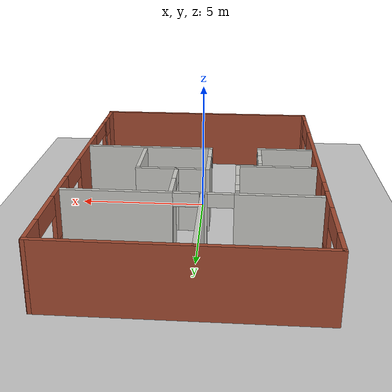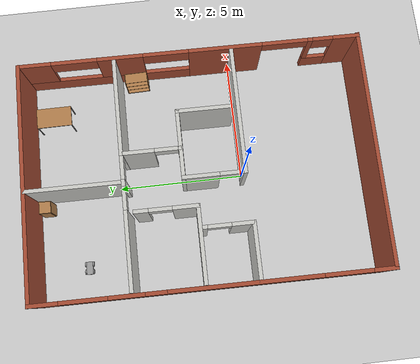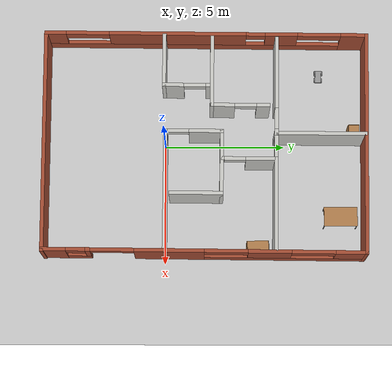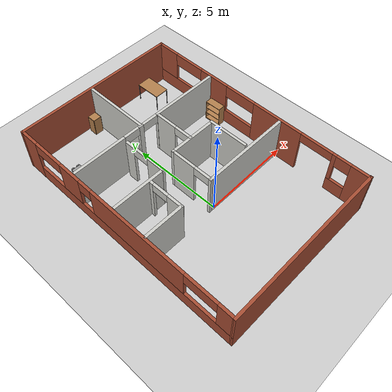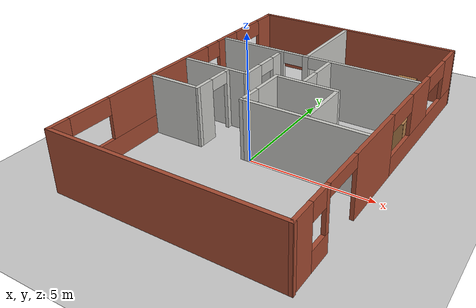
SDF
<sdf version="1.6">
 <world name="default">
  <model name="ground_plane">
   <static>1</static>
   <link name="link">
    <collision name="collision">
     <geometry><plane><normal>0 0 1</normal><size>100 100</size></plane></geometry>
     <surface><friction><ode><mu>100</mu><mu2>50</mu2></ode></friction></surface>
    </collision>
    <visual name="visual">
     <cast_shadows>0</cast_shadows>
     <geometry><plane><normal>0 0 1</normal><size>100 100</size></plane></geometry>
     <material>
      <script><uri>file://media/materials/scripts/gazebo.material</uri><name>Gazebo/Grey</name></script>
     </material>
    </visual>
   </link>
  </model>
  <model name="myhouse">
   <pose>0.168562 1.67263 0 0 0 -1.57911</pose>
   <link name="Wall_38">
    <collision name="Wall_38_Collision">
     <geometry><box><size>9.28418 0.15 2.5</size></box></geometry>
     <pose>0 0 1.25 0 -0 0</pose>
    </collision>
    <visual name="Wall_38_Visual">
     <pose>0 0 1.25 0 -0 0</pose>
     <geometry><box><size>9.28418 0.15 2.5</size></box></geometry>
     <material>
      <script><uri>file://media/materials/scripts/gazebo.material</uri><name>Gazebo/Bricks</name></script>
      <ambient>0.996078 0.47451 0.0196078 1</ambient>
     </material>
    </visual>
    <pose>-6.69036 -4.9e-05 0 0 0 -1.5708</pose>
   </link>
   <link name="Wall_39">
    <pose>0.000136 -4.56705 0 0 -0 0</pose>
    <visual name="Wall_39_Visual_0">
     <pose>-6.18995 0 1.25 0 -0 0</pose>
     <geometry><box><size>1.1511 0.15 2.5</size></box></geometry>
     <material>
      <script><uri>file://media/materials/scripts/gazebo.material</uri><name>Gazebo/Bricks</name></script>
      <ambient>0.996078 0.47451 0.0196078 1</ambient>
     </material>
    </visual>
    <collision name="Wall_39_Collision_0">
     <geometry><box><size>1.1511 0.15 2.5</size></box></geometry>
     <pose>-6.18995 0 1.25 0 -0 0</pose>
    </collision>
    <visual name="Wall_39_Visual_1">
     <pose>0.575549 0 0.4 0 -0 0</pose>
     <geometry><box><size>12.3799 0.15 0.8</size></box></geometry>
     <material>
      <script><uri>file://media/materials/scripts/gazebo.material</uri><name>Gazebo/Bricks</name></script>
      <ambient>0.996078 0.47451 0.0196078 1</ambient>
     </material>
    </visual>
    <collision name="Wall_39_Collision_1">
     <geometry><box><size>12.3799 0.15 0.8</size></box></geometry>
     <pose>0.575549 0 0.4 0 -0 0</pose>
    </collision>
    <visual name="Wall_39_Visual_2">
     <pose>-3.14182 0 1.65 0 -0 0</pose>
     <geometry><box><size>1.34517 0.15 1.7</size></box></geometry>
     <material>
      <script><uri>file://media/materials/scripts/gazebo.material</uri><name>Gazebo/Bricks</name></script>
      <ambient>0.996078 0.47451 0.0196078 1</ambient>
     </material>
    </visual>
    <collision name="Wall_39_Collision_2">
     <geometry><box><size>1.34517 0.15 1.7</size></box></geometry>
     <pose>-3.14182 0 1.65 0 -0 0</pose>
    </collision>
    <visual name="Wall_39_Visual_3">
     <pose>1.19211 0 1.65 0 -0 0</pose>
     <geometry><box><size>5.72269 0.15 1.7</size></box></geometry>
     <material>
      <script><uri>file://media/materials/scripts/gazebo.material</uri><name>Gazebo/Bricks</name></script>
      <ambient>0.996078 0.47451 0.0196078 1</ambient>
     </material>
    </visual>
    <collision name="Wall_39_Collision_3">
     <geometry><box><size>5.72269 0.15 1.7</size></box></geometry>
     <pose>1.19211 0 1.65 0 -0 0</pose>
    </collision>
    <visual name="Wall_39_Visual_4">
     <pose>6.30948 0 1.65 0 -0 0</pose>
     <geometry><box><size>0.912041 0.15 1.7</size></box></geometry>
     <material>
      <script><uri>file://media/materials/scripts/gazebo.material</uri><name>Gazebo/Bricks</name></script>
      <ambient>0.996078 0.47451 0.0196078 1</ambient>
     </material>
    </visual>
    <collision name="Wall_39_Collision_4">
     <geometry><box><size>0.912041 0.15 1.7</size></box></geometry>
     <pose>6.30948 0 1.65 0 -0 0</pose>
    </collision>
    <visual name="Wall_39_Visual_5">
     <pose>-4.7144 0 2.15 0 -0 0</pose>
     <geometry><box><size>1.8 0.15 0.7</size></box></geometry>
     <material>
      <script><uri>file://media/materials/scripts/gazebo.material</uri><name>Gazebo/Bricks</name></script>
      <ambient>0.996078 0.47451 0.0196078 1</ambient>
     </material>
    </visual>
    <collision name="Wall_39_Collision_5">
     <geometry><box><size>1.8 0.15 0.7</size></box></geometry>
     <pose>-4.7144 0 2.15 0 -0 0</pose>
    </collision>
    <visual name="Wall_39_Visual_6">
     <pose>-2.06923 0 2.15 0 -0 0</pose>
     <geometry><box><size>0.8 0.15 0.7</size></box></geometry>
     <material>
      <script><uri>file://media/materials/scripts/gazebo.material</uri><name>Gazebo/Bricks</name></script>
      <ambient>0.996078 0.47451 0.0196078 1</ambient>
     </material>
    </visual>
    <collision name="Wall_39_Collision_6">
     <geometry><box><size>0.8 0.15 0.7</size></box></geometry>
     <pose>-2.06923 0 2.15 0 -0 0</pose>
    </collision>
    <visual name="Wall_39_Visual_7">
     <pose>4.95346 0 2.15 0 -0 0</pose>
     <geometry><box><size>1.8 0.15 0.7</size></box></geometry>
     <material>
      <script><uri>file://media/materials/scripts/gazebo.material</uri><name>Gazebo/Bricks</name></script>
      <ambient>0.996078 0.47451 0.0196078 1</ambient>
     </material>
    </visual>
    <collision name="Wall_39_Collision_7">
     <geometry><box><size>1.8 0.15 0.7</size></box></geometry>
     <pose>4.95346 0 2.15 0 -0 0</pose>
    </collision>
   </link>
   <link name="Wall_40">
    <collision name="Wall_40_Collision">
     <geometry><box><size>9.28418 0.15 2.5</size></box></geometry>
     <pose>0 0 1.25 0 -0 0</pose>
    </collision>
    <visual name="Wall_40_Visual">
     <pose>0 0 1.25 0 -0 0</pose>
     <geometry><box><size>9.28418 0.15 2.5</size></box></geometry>
     <material>
      <script><uri>file://media/materials/scripts/gazebo.material</uri><name>Gazebo/Bricks</name></script>
      <ambient>0.996078 0.47451 0.0196078 1</ambient>
     </material>
    </visual>
    <pose>6.69014 4.1e-05 0 0 -0 1.57091</pose>
   </link>
   <link name="Wall_41">
    <pose>-0.000364 4.55175 0 0 -0 3.13932</pose>
    <visual name="Wall_41_Visual_0">
     <pose>-6.23299 0 1.25 0 -0 0</pose>
     <geometry><box><size>1.06429 0.15 2.5</size></box></geometry>
     <material>
      <script><uri>file://media/materials/scripts/gazebo.material</uri><name>Gazebo/Bricks</name></script>
      <ambient>0.996078 0.47451 0.0196078 1</ambient>
     </material>
    </visual>
    <collision name="Wall_41_Collision_0">
     <geometry><box><size>1.06429 0.15 2.5</size></box></geometry>
     <pose>-6.23299 0 1.25 0 -0 0</pose>
    </collision>
    <visual name="Wall_41_Visual_1">
     <pose>-1.44735 0 1.25 0 -0 0</pose>
     <geometry><box><size>2.90668 0.15 2.5</size></box></geometry>
     <material>
      <script><uri>file://media/materials/scripts/gazebo.material</uri><name>Gazebo/Bricks</name></script>
      <ambient>0.996078 0.47451 0.0196078 1</ambient>
     </material>
    </visual>
    <collision name="Wall_41_Collision_1">
     <geometry><box><size>2.90668 0.15 2.5</size></box></geometry>
     <pose>-1.44735 0 1.25 0 -0 0</pose>
    </collision>
    <visual name="Wall_41_Visual_2">
     <pose>-5.20076 0 0.4 0 -0 0</pose>
     <geometry><box><size>1.00016 0.15 0.8</size></box></geometry>
     <material>
      <script><uri>file://media/materials/scripts/gazebo.material</uri><name>Gazebo/Bricks</name></script>
      <ambient>0.996078 0.47451 0.0196078 1</ambient>
     </material>
    </visual>
    <collision name="Wall_41_Collision_2">
     <geometry><box><size>1.00016 0.15 0.8</size></box></geometry>
     <pose>-5.20076 0 0.4 0 -0 0</pose>
    </collision>
    <visual name="Wall_41_Visual_3">
     <pose>3.38556 0 0.4 0 -0 0</pose>
     <geometry><box><size>6.75914 0.15 0.8</size></box></geometry>
     <material>
      <script><uri>file://media/materials/scripts/gazebo.material</uri><name>Gazebo/Bricks</name></script>
      <ambient>0.996078 0.47451 0.0196078 1</ambient>
     </material>
    </visual>
    <collision name="Wall_41_Collision_3">
     <geometry><box><size>6.75914 0.15 0.8</size></box></geometry>
     <pose>3.38556 0 0.4 0 -0 0</pose>
    </collision>
    <visual name="Wall_41_Visual_4">
     <pose>-4.80076 0 1.65 0 -0 0</pose>
     <geometry><box><size>0.200157 0.15 1.7</size></box></geometry>
     <material>
      <script><uri>file://media/materials/scripts/gazebo.material</uri><name>Gazebo/Bricks</name></script>
      <ambient>0.996078 0.47451 0.0196078 1</ambient>
     </material>
    </visual>
    <collision name="Wall_41_Collision_4">
     <geometry><box><size>0.200157 0.15 1.7</size></box></geometry>
     <pose>-4.80076 0 1.65 0 -0 0</pose>
    </collision>
    <visual name="Wall_41_Visual_5">
     <pose>-4.80076 0 1.65 0 -0 0</pose>
     <geometry><box><size>0.200157 0.15 1.7</size></box></geometry>
     <material>
      <script><uri>file://media/materials/scripts/gazebo.material</uri><name>Gazebo/Bricks</name></script>
      <ambient>0.996078 0.47451 0.0196078 1</ambient>
     </material>
    </visual>
    <collision name="Wall_41_Collision_5">
     <geometry><box><size>0.200157 0.15 1.7</size></box></geometry>
     <pose>-4.80076 0 1.65 0 -0 0</pose>
    </collision>
    <visual name="Wall_41_Visual_6">
     <pose>2.70554 0 1.65 0 -0 0</pose>
     <geometry><box><size>1.79911 0.15 1.7</size></box></geometry>
     <material>
      <script><uri>file://media/materials/scripts/gazebo.material</uri><name>Gazebo/Bricks</name></script>
      <ambient>0.996078 0.47451 0.0196078 1</ambient>
     </material>
    </visual>
    <collision name="Wall_41_Collision_6">
     <geometry><box><size>1.79911 0.15 1.7</size></box></geometry>
     <pose>2.70554 0 1.65 0 -0 0</pose>
    </collision>
    <visual name="Wall_41_Visual_7">
     <pose>6.08511 0 1.65 0 -0 0</pose>
     <geometry><box><size>1.36003 0.15 1.7</size></box></geometry>
     <material>
      <script><uri>file://media/materials/scripts/gazebo.material</uri><name>Gazebo/Bricks</name></script>
      <ambient>0.996078 0.47451 0.0196078 1</ambient>
     </material>
    </visual>
    <collision name="Wall_41_Collision_7">
     <geometry><box><size>1.36003 0.15 1.7</size></box></geometry>
     <pose>6.08511 0 1.65 0 -0 0</pose>
    </collision>
    <visual name="Wall_41_Visual_8">
     <pose>-5.30084 0 2.15 0 -0 0</pose>
     <geometry><box><size>0.8 0.15 0.7</size></box></geometry>
     <material>
      <script><uri>file://media/materials/scripts/gazebo.material</uri><name>Gazebo/Bricks</name></script>
      <ambient>0.996078 0.47451 0.0196078 1</ambient>
     </material>
    </visual>
    <collision name="Wall_41_Collision_8">
     <geometry><box><size>0.8 0.15 0.7</size></box></geometry>
     <pose>-5.30084 0 2.15 0 -0 0</pose>
    </collision>
    <visual name="Wall_41_Visual_9">
     <pose>0.905991 0 2.15 0 -0 0</pose>
     <geometry><box><size>1.8 0.15 0.7</size></box></geometry>
     <material>
      <script><uri>file://media/materials/scripts/gazebo.material</uri><name>Gazebo/Bricks</name></script>
      <ambient>0.996078 0.47451 0.0196078 1</ambient>
     </material>
    </visual>
    <collision name="Wall_41_Collision_9">
     <geometry><box><size>1.8 0.15 0.7</size></box></geometry>
     <pose>0.905991 0 2.15 0 -0 0</pose>
    </collision>
    <visual name="Wall_41_Visual_10">
     <pose>4.5051 0 2.15 0 -0 0</pose>
     <geometry><box><size>1.8 0.15 0.7</size></box></geometry>
     <material>
      <script><uri>file://media/materials/scripts/gazebo.material</uri><name>Gazebo/Bricks</name></script>
      <ambient>0.996078 0.47451 0.0196078 1</ambient>
     </material>
    </visual>
    <collision name="Wall_41_Collision_10">
     <geometry><box><size>1.8 0.15 0.7</size></box></geometry>
     <pose>4.5051 0 2.15 0 -0 0</pose>
    </collision>
    <visual name="Wall_41_Visual_11">
     <pose>-3.80068 0 2.25 0 -0 0</pose>
     <geometry><box><size>1.8 0.15 0.5</size></box></geometry>
     <material>
      <script><uri>file://media/materials/scripts/gazebo.material</uri><name>Gazebo/Bricks</name></script>
      <ambient>0.996078 0.47451 0.0196078 1</ambient>
     </material>
    </visual>
    <collision name="Wall_41_Collision_11">
     <geometry><box><size>1.8 0.15 0.5</size></box></geometry>
     <pose>-3.80068 0 2.25 0 -0 0</pose>
    </collision>
    <visual name="Wall_41_Visual_12">
     <pose>-3.80068 0 2.25 0 -0 0</pose>
     <geometry><box><size>1.8 0.15 0.5</size></box></geometry>
     <material>
      <script><uri>file://media/materials/scripts/gazebo.material</uri><name>Gazebo/Bricks</name></script>
      <ambient>0.996078 0.47451 0.0196078 1</ambient>
     </material>
    </visual>
    <collision name="Wall_41_Collision_12">
     <geometry><box><size>1.8 0.15 0.5</size></box></geometry>
     <pose>-3.80068 0 2.25 0 -0 0</pose>
    </collision>
   </link>
   <link name="Wall_43">
    <pose>-2.95236 0.022951 0 0 0 -1.5708</pose>
    <visual name="Wall_43_Visual_0">
     <pose>-2.54618 0 1.25 0 -0 0</pose>
     <geometry><box><size>3.90763 0.15 2.5</size></box></geometry>
     <material>
      <script><uri>file://media/materials/scripts/gazebo.material</uri><name>Gazebo/CeilingTiled</name></script>
      <ambient>0.760784 0.662745 0.627451 1</ambient>
     </material>
    </visual>
    <collision name="Wall_43_Collision_0">
     <geometry><box><size>3.90763 0.15 2.5</size></box></geometry>
     <pose>-2.54618 0 1.25 0 -0 0</pose>
    </collision>
    <visual name="Wall_43_Visual_1">
     <pose>0.442836 0 1.25 0 -0 0</pose>
     <geometry><box><size>0.270409 0.15 2.5</size></box></geometry>
     <material>
      <script><uri>file://media/materials/scripts/gazebo.material</uri><name>Gazebo/CeilingTiled</name></script>
      <ambient>0.760784 0.662745 0.627451 1</ambient>
     </material>
    </visual>
    <collision name="Wall_43_Collision_1">
     <geometry><box><size>0.270409 0.15 2.5</size></box></geometry>
     <pose>0.442836 0 1.25 0 -0 0</pose>
    </collision>
    <visual name="Wall_43_Visual_2">
     <pose>2.98902 0 1.25 0 -0 0</pose>
     <geometry><box><size>3.02196 0.15 2.5</size></box></geometry>
     <material>
      <script><uri>file://media/materials/scripts/gazebo.material</uri><name>Gazebo/CeilingTiled</name></script>
      <ambient>0.760784 0.662745 0.627451 1</ambient>
     </material>
    </visual>
    <collision name="Wall_43_Collision_2">
     <geometry><box><size>3.02196 0.15 2.5</size></box></geometry>
     <pose>2.98902 0 1.25 0 -0 0</pose>
    </collision>
    <visual name="Wall_43_Visual_3">
     <pose>-0.142368 0 2.25 0 -0 0</pose>
     <geometry><box><size>0.9 0.15 0.5</size></box></geometry>
     <material>
      <script><uri>file://media/materials/scripts/gazebo.material</uri><name>Gazebo/CeilingTiled</name></script>
      <ambient>0.760784 0.662745 0.627451 1</ambient>
     </material>
    </visual>
    <collision name="Wall_43_Collision_3">
     <geometry><box><size>0.9 0.15 0.5</size></box></geometry>
     <pose>-0.142368 0 2.25 0 -0 0</pose>
    </collision>
    <visual name="Wall_43_Visual_4">
     <pose>1.02804 0 2.25 0 -0 0</pose>
     <geometry><box><size>0.9 0.15 0.5</size></box></geometry>
     <material>
      <script><uri>file://media/materials/scripts/gazebo.material</uri><name>Gazebo/CeilingTiled</name></script>
      <ambient>0.760784 0.662745 0.627451 1</ambient>
     </material>
    </visual>
    <collision name="Wall_43_Collision_4">
     <geometry><box><size>0.9 0.15 0.5</size></box></geometry>
     <pose>1.02804 0 2.25 0 -0 0</pose>
    </collision>
   </link>
   <link name="Wall_45">
    <collision name="Wall_45_Collision">
     <geometry><box><size>3.75 0.15 2.5</size></box></geometry>
     <pose>0 0 1.25 0 -0 0</pose>
    </collision>
    <visual name="Wall_45_Visual">
     <pose>0 0 1.25 0 -0 0</pose>
     <geometry><box><size>3.75 0.15 2.5</size></box></geometry>
     <material>
      <script><uri>file://media/materials/scripts/gazebo.material</uri><name>Gazebo/CeilingTiled</name></script>
      <ambient>0.760784 0.662745 0.627451 1</ambient>
     </material>
    </visual>
    <pose>-4.83736 -0.389049 0 0 -0 0</pose>
   </link>
   <link name="Wall_47">
    <pose>-1.77981 0.698376 0 0 -0 0</pose>
    <visual name="Wall_47_Visual_0">
     <pose>-0.514494 0 1.25 0 -0 0</pose>
     <geometry><box><size>1.22101 0.15 2.5</size></box></geometry>
     <material>
      <script><uri>file://media/materials/scripts/gazebo.material</uri><name>Gazebo/CeilingTiled</name></script>
      <ambient>0.760784 0.662745 0.627451 1</ambient>
     </material>
    </visual>
    <collision name="Wall_47_Collision_0">
     <geometry><box><size>1.22101 0.15 2.5</size></box></geometry>
     <pose>-0.514494 0 1.25 0 -0 0</pose>
    </collision>
    <visual name="Wall_47_Visual_1">
     <pose>1.06051 0 1.25 0 -0 0</pose>
     <geometry><box><size>0.128988 0.15 2.5</size></box></geometry>
     <material>
      <script><uri>file://media/materials/scripts/gazebo.material</uri><name>Gazebo/CeilingTiled</name></script>
      <ambient>0.760784 0.662745 0.627451 1</ambient>
     </material>
    </visual>
    <collision name="Wall_47_Collision_1">
     <geometry><box><size>0.128988 0.15 2.5</size></box></geometry>
     <pose>1.06051 0 1.25 0 -0 0</pose>
    </collision>
    <visual name="Wall_47_Visual_2">
     <pose>0.546012 0 2.25 0 -0 0</pose>
     <geometry><box><size>0.9 0.15 0.5</size></box></geometry>
     <material>
      <script><uri>file://media/materials/scripts/gazebo.material</uri><name>Gazebo/CeilingTiled</name></script>
      <ambient>0.760784 0.662745 0.627451 1</ambient>
     </material>
    </visual>
    <collision name="Wall_47_Collision_2">
     <geometry><box><size>0.9 0.15 0.5</size></box></geometry>
     <pose>0.546012 0 2.25 0 -0 0</pose>
    </collision>
   </link>
   <link name="Wall_49">
    <collision name="Wall_49_Collision">
     <geometry><box><size>5 0.15 2.5</size></box></geometry>
     <pose>0 0 1.25 0 -0 0</pose>
    </collision>
    <visual name="Wall_49_Visual">
     <pose>0 0 1.25 0 -0 0</pose>
     <geometry><box><size>5 0.15 2.5</size></box></geometry>
     <material>
      <script><uri>file://media/materials/scripts/gazebo.material</uri><name>Gazebo/CeilingTiled</name></script>
      <ambient>0.760784 0.662745 0.627451 1</ambient>
     </material>
    </visual>
    <pose>1.66164 1.97395 0 0 0 -1.5708</pose>
   </link>
   <link name="Wall_50">
    <pose>0.486636 -0.451049 0 0 -0 3.14159</pose>
    <visual name="Wall_50_Visual_0">
     <pose>-1.17305 0 1.25 0 -0 0</pose>
     <geometry><box><size>0.153899 0.15 2.5</size></box></geometry>
     <material>
      <script><uri>file://media/materials/scripts/gazebo.material</uri><name>Gazebo/CeilingTiled</name></script>
      <ambient>0.760784 0.662745 0.627451 1</ambient>
     </material>
    </visual>
    <collision name="Wall_50_Collision_0">
     <geometry><box><size>0.153899 0.15 2.5</size></box></geometry>
     <pose>-1.17305 0 1.25 0 -0 0</pose>
    </collision>
    <visual name="Wall_50_Visual_1">
     <pose>0.526949 0 1.25 0 -0 0</pose>
     <geometry><box><size>1.4461 0.15 2.5</size></box></geometry>
     <material>
      <script><uri>file://media/materials/scripts/gazebo.material</uri><name>Gazebo/CeilingTiled</name></script>
      <ambient>0.760784 0.662745 0.627451 1</ambient>
     </material>
    </visual>
    <collision name="Wall_50_Collision_1">
     <geometry><box><size>1.4461 0.15 2.5</size></box></geometry>
     <pose>0.526949 0 1.25 0 -0 0</pose>
    </collision>
    <visual name="Wall_50_Visual_2">
     <pose>-0.646101 0 2.25 0 -0 0</pose>
     <geometry><box><size>0.9 0.15 0.5</size></box></geometry>
     <material>
      <script><uri>file://media/materials/scripts/gazebo.material</uri><name>Gazebo/CeilingTiled</name></script>
      <ambient>0.760784 0.662745 0.627451 1</ambient>
     </material>
    </visual>
    <collision name="Wall_50_Collision_2">
     <geometry><box><size>0.9 0.15 0.5</size></box></geometry>
     <pose>-0.646101 0 2.25 0 -0 0</pose>
    </collision>
   </link>
   <link name="Wall_51">
    <collision name="Wall_51_Collision">
     <geometry><box><size>2.75 0.15 2.5</size></box></geometry>
     <pose>0 0 1.25 0 -0 0</pose>
    </collision>
    <visual name="Wall_51_Visual">
     <pose>0 0 1.25 0 -0 0</pose>
     <geometry><box><size>2.75 0.15 2.5</size></box></geometry>
     <material>
      <script><uri>file://media/materials/scripts/gazebo.material</uri><name>Gazebo/CeilingTiled</name></script>
      <ambient>0.760784 0.662745 0.627451 1</ambient>
     </material>
    </visual>
    <pose>-0.688364 0.848951 0 0 -0 1.5708</pose>
   </link>
   <link name="Wall_52">
    <collision name="Wall_52_Collision">
     <geometry><box><size>2.25 0.15 2.5</size></box></geometry>
     <pose>0 0 1.25 0 -0 0</pose>
    </collision>
    <visual name="Wall_52_Visual">
     <pose>0 0 1.25 0 -0 0</pose>
     <geometry><box><size>2.25 0.15 2.5</size></box></geometry>
     <material>
      <script><uri>file://media/materials/scripts/gazebo.material</uri><name>Gazebo/CeilingTiled</name></script>
      <ambient>0.760784 0.662745 0.627451 1</ambient>
     </material>
    </visual>
    <pose>0.361636 2.14895 0 0 -0 0</pose>
   </link>
   <link name="Wall_54">
    <collision name="Wall_54_Collision">
     <geometry><box><size>2.25 0.15 2.5</size></box></geometry>
     <pose>0 0 1.25 0 -0 0</pose>
    </collision>
    <visual name="Wall_54_Visual">
     <pose>0 0 1.25 0 -0 0</pose>
     <geometry><box><size>2.25 0.15 2.5</size></box></geometry>
     <material>
      <script><uri>file://media/materials/scripts/gazebo.material</uri><name>Gazebo/CeilingTiled</name></script>
      <ambient>0.760784 0.662745 0.627451 1</ambient>
     </material>
    </visual>
    <pose>1.74164 -3.43505 0 0 -0 1.5708</pose>
   </link>
   <link name="Wall_55">
    <pose>0.816636 -2.38505 0 0 -0 3.14159</pose>
    <visual name="Wall_55_Visual_0">
     <pose>-0.547756 0 1.25 0 -0 0</pose>
     <geometry><box><size>0.904487 0.15 2.5</size></box></geometry>
     <material>
      <script><uri>file://media/materials/scripts/gazebo.material</uri><name>Gazebo/CeilingTiled</name></script>
      <ambient>0.760784 0.662745 0.627451 1</ambient>
     </material>
    </visual>
    <collision name="Wall_55_Collision_0">
     <geometry><box><size>0.904487 0.15 2.5</size></box></geometry>
     <pose>-0.547756 0 1.25 0 -0 0</pose>
    </collision>
    <visual name="Wall_55_Visual_1">
     <pose>0.902244 0 1.25 0 -0 0</pose>
     <geometry><box><size>0.195513 0.15 2.5</size></box></geometry>
     <material>
      <script><uri>file://media/materials/scripts/gazebo.material</uri><name>Gazebo/CeilingTiled</name></script>
      <ambient>0.760784 0.662745 0.627451 1</ambient>
     </material>
    </visual>
    <collision name="Wall_55_Collision_1">
     <geometry><box><size>0.195513 0.15 2.5</size></box></geometry>
     <pose>0.902244 0 1.25 0 -0 0</pose>
    </collision>
    <visual name="Wall_55_Visual_2">
     <pose>0.354487 0 2.25 0 -0 0</pose>
     <geometry><box><size>0.9 0.15 0.5</size></box></geometry>
     <material>
      <script><uri>file://media/materials/scripts/gazebo.material</uri><name>Gazebo/CeilingTiled</name></script>
      <ambient>0.760784 0.662745 0.627451 1</ambient>
     </material>
    </visual>
    <collision name="Wall_55_Collision_2">
     <geometry><box><size>0.9 0.15 0.5</size></box></geometry>
     <pose>0.354487 0 2.25 0 -0 0</pose>
    </collision>
   </link>
   <link name="Wall_57">
    <collision name="Wall_57_Collision">
     <geometry><box><size>3 0.15 2.5</size></box></geometry>
     <pose>0 0 1.25 0 -0 0</pose>
    </collision>
    <visual name="Wall_57_Visual">
     <pose>0 0 1.25 0 -0 0</pose>
     <geometry><box><size>3 0.15 2.5</size></box></geometry>
     <material>
      <script><uri>file://media/materials/scripts/gazebo.material</uri><name>Gazebo/CeilingTiled</name></script>
      <ambient>0.760784 0.662745 0.627451 1</ambient>
     </material>
    </visual>
    <pose>-0.253364 -2.98005 0 0 -0 1.5708</pose>
   </link>
   <link name="Wall_58">
    <pose>-1.42836 -1.55505 0 0 -0 3.14159</pose>
    <visual name="Wall_58_Visual_0">
     <pose>-0.732595 0 1.25 0 -0 0</pose>
     <geometry><box><size>1.03481 0.15 2.5</size></box></geometry>
     <material>
      <script><uri>file://media/materials/scripts/gazebo.material</uri><name>Gazebo/CeilingTiled</name></script>
      <ambient>0.760784 0.662745 0.627451 1</ambient>
     </material>
    </visual>
    <collision name="Wall_58_Collision_0">
     <geometry><box><size>1.03481 0.15 2.5</size></box></geometry>
     <pose>-0.732595 0 1.25 0 -0 0</pose>
    </collision>
    <visual name="Wall_58_Visual_1">
     <pose>0.967405 0 1.25 0 -0 0</pose>
     <geometry><box><size>0.565189 0.15 2.5</size></box></geometry>
     <material>
      <script><uri>file://media/materials/scripts/gazebo.material</uri><name>Gazebo/CeilingTiled</name></script>
      <ambient>0.760784 0.662745 0.627451 1</ambient>
     </material>
    </visual>
    <collision name="Wall_58_Collision_1">
     <geometry><box><size>0.565189 0.15 2.5</size></box></geometry>
     <pose>0.967405 0 1.25 0 -0 0</pose>
    </collision>
    <visual name="Wall_58_Visual_2">
     <pose>0.234811 0 2.25 0 -0 0</pose>
     <geometry><box><size>0.9 0.15 0.5</size></box></geometry>
     <material>
      <script><uri>file://media/materials/scripts/gazebo.material</uri><name>Gazebo/CeilingTiled</name></script>
      <ambient>0.760784 0.662745 0.627451 1</ambient>
     </material>
    </visual>
    <collision name="Wall_58_Collision_2">
     <geometry><box><size>0.9 0.15 0.5</size></box></geometry>
     <pose>0.234811 0 2.25 0 -0 0</pose>
    </collision>
   </link>
   <static>1</static>
  </model>
  <model name="Car">
   <link name="link_0">
    <inertial>
     <mass>1</mass>
     <inertia>
      <ixx>0.166667</ixx>
      <ixy>0</ixy>
      <ixz>0</ixz>
      <iyy>0.166667</iyy>
      <iyz>0</iyz>
      <izz>0.166667</izz>
     </inertia>
    </inertial>
    <visual name="visual">
     <geometry><box><size>0.25 0.5 0.1</size></box></geometry>
     <material>
      <lighting>1</lighting>
      <script><uri>file://media/materials/scripts/gazebo.material</uri><name>Gazebo/Grey</name></script>
      <ambient>0.3 0.3 0.3 1</ambient>
      <diffuse>0.7 0.7 0.7 1</diffuse>
      <specular>0.01 0.01 0.01 1</specular>
      <emissive>0 0 0 1</emissive>
      <shader type="vertex"><normal_map>__default__</normal_map></shader>
     </material>
    </visual>
    <collision name="collision">
     <geometry><box><size>0.25 0.5 0.1</size></box></geometry>
     <surface>
      <friction>
       <ode><mu>1</mu><mu2>1</mu2><fdir1>0 0 0</fdir1><slip1>0</slip1><slip2>0</slip2></ode>
       <torsional>
        <coefficient>1</coefficient>
        <patch_radius>0</patch_radius>
        <surface_radius>0</surface_radius>
        <use_patch_radius>1</use_patch_radius>
        <ode><slip>0</slip></ode>
       </torsional>
      </friction>
      <bounce><restitution_coefficient>0</restitution_coefficient><threshold>1e+06</threshold></bounce>
      <contact>
       <collide_without_contact>0</collide_without_contact>
       <collide_without_contact_bitmask>1</collide_without_contact_bitmask>
       <collide_bitmask>1</collide_bitmask>
       <ode>
        <soft_cfm>0</soft_cfm>
        <soft_erp>0.2</soft_erp>
        <kp>1e+13</kp>
        <kd>1</kd>
        <max_vel>0.01</max_vel>
        <min_depth>0</min_depth>
       </ode>
       <bullet>
        <split_impulse>1</split_impulse>
        <split_impulse_penetration_threshold>-0.01</split_impulse_penetration_threshold>
        <soft_cfm>0</soft_cfm>
        <soft_erp>0.2</soft_erp>
        <kp>1e+13</kp>
        <kd>1</kd>
       </bullet>
      </contact>
     </surface>
    </collision>
   </link>
   <link name="link_1">
    <pose>-0.15001 0.15 0 0 1.5707 0</pose>
    <inertial>
     <mass>1</mass>
     <inertia><ixx>0.145833</ixx><ixy>0</ixy><ixz>0</ixz><iyy>0.145833</iyy><iyz>0</iyz><izz>0.125</izz></inertia>
    </inertial>
    <visual name="visual">
     <geometry><cylinder><radius>0.1</radius><length>0.05</length></cylinder></geometry>
     <material>
      <lighting>1</lighting>
      <script><uri>file://media/materials/scripts/gazebo.material</uri><name>Gazebo/Grey</name></script>
      <ambient>0.3 0.3 0.3 1</ambient>
      <diffuse>0.7 0.7 0.7 1</diffuse>
      <specular>0.01 0.01 0.01 1</specular>
      <emissive>0 0 0 1</emissive>
      <shader type="vertex"><normal_map>__default__</normal_map></shader>
     </material>
    </visual>
    <collision name="collision">
     <geometry><cylinder><radius>0.1</radius><length>0.05</length></cylinder></geometry>
     <surface>
      <friction>
       <ode><mu>1</mu><mu2>1</mu2><fdir1>0 0 0</fdir1><slip1>0</slip1><slip2>0</slip2></ode>
       <torsional>
        <coefficient>1</coefficient>
        <patch_radius>0</patch_radius>
        <surface_radius>0</surface_radius>
        <use_patch_radius>1</use_patch_radius>
        <ode><slip>0</slip></ode>
       </torsional>
      </friction>
      <bounce><restitution_coefficient>0</restitution_coefficient><threshold>1e+06</threshold></bounce>
      <contact>
       <collide_without_contact>0</collide_without_contact>
       <collide_without_contact_bitmask>1</collide_without_contact_bitmask>
       <collide_bitmask>1</collide_bitmask>
       <ode>
        <soft_cfm>0</soft_cfm>
        <soft_erp>0.2</soft_erp>
        <kp>1e+13</kp>
        <kd>1</kd>
        <max_vel>0.01</max_vel>
        <min_depth>0</min_depth>
       </ode>
       <bullet>
        <split_impulse>1</split_impulse>
        <split_impulse_penetration_threshold>-0.01</split_impulse_penetration_threshold>
        <soft_cfm>0</soft_cfm>
        <soft_erp>0.2</soft_erp>
        <kp>1e+13</kp>
        <kd>1</kd>
       </bullet>
      </contact>
     </surface>
    </collision>
   </link>
   <link name="link_1_clone">
    <pose>0.15001 -0.15 0 0 1.5707 0</pose>
    <inertial>
     <mass>1</mass>
     <inertia><ixx>0.145833</ixx><ixy>0</ixy><ixz>0</ixz><iyy>0.145833</iyy><iyz>0</iyz><izz>0.125</izz></inertia>
    </inertial>
    <visual name="visual">
     <geometry><cylinder><radius>0.1</radius><length>0.05</length></cylinder></geometry>
     <material>
      <lighting>1</lighting>
      <script><uri>file://media/materials/scripts/gazebo.material</uri><name>Gazebo/Grey</name></script>
      <ambient>0.3 0.3 0.3 1</ambient>
      <diffuse>0.7 0.7 0.7 1</diffuse>
      <specular>0.01 0.01 0.01 1</specular>
      <emissive>0 0 0 1</emissive>
      <shader type="vertex"><normal_map>__default__</normal_map></shader>
     </material>
    </visual>
    <collision name="collision">
     <geometry><cylinder><radius>0.1</radius><length>0.05</length></cylinder></geometry>
     <surface>
      <friction>
       <ode><mu>1</mu><mu2>1</mu2><fdir1>0 0 0</fdir1><slip1>0</slip1><slip2>0</slip2></ode>
       <torsional>
        <coefficient>1</coefficient>
        <patch_radius>0</patch_radius>
        <surface_radius>0</surface_radius>
        <use_patch_radius>1</use_patch_radius>
        <ode><slip>0</slip></ode>
       </torsional>
      </friction>
      <bounce><restitution_coefficient>0</restitution_coefficient><threshold>1e+06</threshold></bounce>
      <contact>
       <collide_without_contact>0</collide_without_contact>
       <collide_without_contact_bitmask>1</collide_without_contact_bitmask>
       <collide_bitmask>1</collide_bitmask>
       <ode>
        <soft_cfm>0</soft_cfm>
        <soft_erp>0.2</soft_erp>
        <kp>1e+13</kp>
        <kd>1</kd>
        <max_vel>0.01</max_vel>
        <min_depth>0</min_depth>
       </ode>
       <bullet>
        <split_impulse>1</split_impulse>
        <split_impulse_penetration_threshold>-0.01</split_impulse_penetration_threshold>
        <soft_cfm>0</soft_cfm>
        <soft_erp>0.2</soft_erp>
        <kp>1e+13</kp>
        <kd>1</kd>
       </bullet>
      </contact>
     </surface>
    </collision>
   </link>
   <link name="link_1_clone_0">
    <pose>-0.15001 -0.15 0 0 1.5707 0</pose>
    <inertial>
     <mass>1</mass>
     <inertia><ixx>0.145833</ixx><ixy>0</ixy><ixz>0</ixz><iyy>0.145833</iyy><iyz>0</iyz><izz>0.125</izz></inertia>
    </inertial>
    <visual name="visual">
     <geometry><cylinder><radius>0.1</radius><length>0.05</length></cylinder></geometry>
     <material>
      <lighting>1</lighting>
      <script><uri>file://media/materials/scripts/gazebo.material</uri><name>Gazebo/Grey</name></script>
      <ambient>0.3 0.3 0.3 1</ambient>
      <diffuse>0.7 0.7 0.7 1</diffuse>
      <specular>0.01 0.01 0.01 1</specular>
      <emissive>0 0 0 1</emissive>
      <shader type="vertex"><normal_map>__default__</normal_map></shader>
     </material>
    </visual>
    <collision name="collision">
     <geometry><cylinder><radius>0.1</radius><length>0.05</length></cylinder></geometry>
     <surface>
      <friction>
       <ode><mu>1</mu><mu2>1</mu2><fdir1>0 0 0</fdir1><slip1>0</slip1><slip2>0</slip2></ode>
       <torsional>
        <coefficient>1</coefficient>
        <patch_radius>0</patch_radius>
        <surface_radius>0</surface_radius>
        <use_patch_radius>1</use_patch_radius>
        <ode><slip>0</slip></ode>
       </torsional>
      </friction>
      <bounce><restitution_coefficient>0</restitution_coefficient><threshold>1e+06</threshold></bounce>
      <contact>
       <collide_without_contact>0</collide_without_contact>
       <collide_without_contact_bitmask>1</collide_without_contact_bitmask>
       <collide_bitmask>1</collide_bitmask>
       <ode>
        <soft_cfm>0</soft_cfm>
        <soft_erp>0.2</soft_erp>
        <kp>1e+13</kp>
        <kd>1</kd>
        <max_vel>0.01</max_vel>
        <min_depth>0</min_depth>
       </ode>
       <bullet>
        <split_impulse>1</split_impulse>
        <split_impulse_penetration_threshold>-0.01</split_impulse_penetration_threshold>
        <soft_cfm>0</soft_cfm>
        <soft_erp>0.2</soft_erp>
        <kp>1e+13</kp>
        <kd>1</kd>
       </bullet>
      </contact>
     </surface>
    </collision>
   </link>
   <link name="link_1_clone_clone">
    <pose>0.15001 0.15 0 0 1.5707 0</pose>
    <inertial>
     <mass>1</mass>
     <inertia><ixx>0.145833</ixx><ixy>0</ixy><ixz>0</ixz><iyy>0.145833</iyy><iyz>0</iyz><izz>0.125</izz></inertia>
    </inertial>
    <visual name="visual">
     <geometry><cylinder><radius>0.1</radius><length>0.05</length></cylinder></geometry>
     <material>
      <lighting>1</lighting>
      <script><uri>file://media/materials/scripts/gazebo.material</uri><name>Gazebo/Grey</name></script>
      <ambient>0.3 0.3 0.3 1</ambient>
      <diffuse>0.7 0.7 0.7 1</diffuse>
      <specular>0.01 0.01 0.01 1</specular>
      <emissive>0 0 0 1</emissive>
      <shader type="vertex"><normal_map>__default__</normal_map></shader>
     </material>
    </visual>
    <collision name="collision">
     <geometry><cylinder><radius>0.1</radius><length>0.05</length></cylinder></geometry>
     <surface>
      <friction>
       <ode><mu>1</mu><mu2>1</mu2><fdir1>0 0 0</fdir1><slip1>0</slip1><slip2>0</slip2></ode>
       <torsional>
        <coefficient>1</coefficient>
        <patch_radius>0</patch_radius>
        <surface_radius>0</surface_radius>
        <use_patch_radius>1</use_patch_radius>
        <ode><slip>0</slip></ode>
       </torsional>
      </friction>
      <bounce><restitution_coefficient>0</restitution_coefficient><threshold>1e+06</threshold></bounce>
      <contact>
       <collide_without_contact>0</collide_without_contact>
       <collide_without_contact_bitmask>1</collide_without_contact_bitmask>
       <collide_bitmask>1</collide_bitmask>
       <ode>
        <soft_cfm>0</soft_cfm>
        <soft_erp>0.2</soft_erp>
        <kp>1e+13</kp>
        <kd>1</kd>
        <max_vel>0.01</max_vel>
        <min_depth>0</min_depth>
       </ode>
       <bullet>
        <split_impulse>1</split_impulse>
        <split_impulse_penetration_threshold>-0.01</split_impulse_penetration_threshold>
        <soft_cfm>0</soft_cfm>
        <soft_erp>0.2</soft_erp>
        <kp>1e+13</kp>
        <kd>1</kd>
       </bullet>
      </contact>
     </surface>
    </collision>
   </link>
   <joint name="link_0_JOINT_0" type="revolute">
    <parent>link_0</parent>
    <child>link_1</child>
    <axis>
     <xyz>0 0 1</xyz>
     <use_parent_model_frame>0</use_parent_model_frame>
     <limit>
      <lower>-1.79769e+308</lower>
      <upper>1.79769e+308</upper>
      <effort>-1</effort>
      <velocity>-1</velocity>
     </limit>
     <dynamics>
      <spring_reference>0</spring_reference>
      <spring_stiffness>0</spring_stiffness>
      <damping>0</damping>
     </dynamics>
    </axis>
    <physics>
     <ode><limit><cfm>0</cfm><erp>0.2</erp></limit><suspension><cfm>0</cfm><erp>0.2</erp></suspension></ode>
    </physics>
   </joint>
   <joint name="link_0_JOINT_1" type="revolute">
    <parent>link_0</parent>
    <child>link_1_clone_0</child>
    <axis>
     <xyz>0 0 1</xyz>
     <use_parent_model_frame>0</use_parent_model_frame>
     <limit>
      <lower>-1.79769e+308</lower>
      <upper>1.79769e+308</upper>
      <effort>-1</effort>
      <velocity>-1</velocity>
     </limit>
     <dynamics>
      <spring_reference>0</spring_reference>
      <spring_stiffness>0</spring_stiffness>
      <damping>0</damping>
     </dynamics>
    </axis>
    <physics>
     <ode><limit><cfm>0</cfm><erp>0.2</erp></limit><suspension><cfm>0</cfm><erp>0.2</erp></suspension></ode>
    </physics>
   </joint>
   <joint name="link_0_JOINT_2" type="revolute">
    <parent>link_0</parent>
    <child>link_1_clone_clone</child>
    <axis>
     <xyz>0 0 1</xyz>
     <use_parent_model_frame>0</use_parent_model_frame>
     <limit>
      <lower>-1.79769e+308</lower>
      <upper>1.79769e+308</upper>
      <effort>-1</effort>
      <velocity>-1</velocity>
     </limit>
     <dynamics>
      <spring_reference>0</spring_reference>
      <spring_stiffness>0</spring_stiffness>
      <damping>0</damping>
     </dynamics>
    </axis>
    <physics>
     <ode><limit><cfm>0</cfm><erp>0.2</erp></limit><suspension><cfm>0</cfm><erp>0.2</erp></suspension></ode>
    </physics>
   </joint>
   <joint name="link_0_JOINT_3" type="revolute">
    <parent>link_0</parent>
    <child>link_1_clone</child>
    <axis>
     <xyz>0 0 1</xyz>
     <use_parent_model_frame>0</use_parent_model_frame>
     <limit>
      <lower>-1.79769e+308</lower>
      <upper>1.79769e+308</upper>
      <effort>-1</effort>
      <velocity>-1</velocity>
     </limit>
     <dynamics>
      <spring_reference>0</spring_reference>
      <spring_stiffness>0</spring_stiffness>
      <damping>0</damping>
     </dynamics>
    </axis>
    <physics>
     <ode><limit><cfm>0</cfm><erp>0.2</erp></limit><suspension><cfm>0</cfm><erp>0.2</erp></suspension></ode>
    </physics>
   </joint>
   <static>0</static>
   <pose>-3.06635 6.49459 0.100002 0 0 -1.61811</pose>
  </model>
  <model name="table">
   <static>0</static>
   <link name="link">
    <collision name="surface">
     <pose>0 0 1 0 -0 0</pose>
     <geometry><box><size>1.5 0.8 0.03</size></box></geometry>
     <surface><friction><ode><mu>0.6</mu><mu2>0.6</mu2></ode></friction></surface>
    </collision>
    <visual name="visual1">
     <pose>0 0 1 0 -0 0</pose>
     <geometry><box><size>1.4 0.8 0.04</size></box></geometry>
     <material>
      <script><uri>file://media/materials/scripts/gazebo.material</uri><name>Gazebo/Wood</name></script>
     </material>
    </visual>
    <collision name="front_left_leg">
     <pose>0.68 0.38 0.5 0 -0 0</pose>
     <geometry><cylinder><radius>0.02</radius><length>1</length></cylinder></geometry>
    </collision>
    <visual name="front_left_leg">
     <pose>0.68 0.38 0.5 0 -0 0</pose>
     <geometry><cylinder><radius>0.02</radius><length>1</length></cylinder></geometry>
     <material>
      <script><uri>file://media/materials/scripts/gazebo.material</uri><name>Gazebo/Grey</name></script>
     </material>
    </visual>
    <collision name="front_right_leg">
     <pose>0.68 -0.38 0.5 0 -0 0</pose>
     <geometry><cylinder><radius>0.02</radius><length>1</length></cylinder></geometry>
    </collision>
    <visual name="front_right_leg">
     <pose>0.68 -0.38 0.5 0 -0 0</pose>
     <geometry><cylinder><radius>0.02</radius><length>1</length></cylinder></geometry>
     <material>
      <script><uri>file://media/materials/scripts/gazebo.material</uri><name>Gazebo/Grey</name></script>
     </material>
    </visual>
    <collision name="back_right_leg">
     <pose>-0.68 -0.38 0.5 0 -0 0</pose>
     <geometry><cylinder><radius>0.02</radius><length>1</length></cylinder></geometry>
    </collision>
    <visual name="back_right_leg">
     <pose>-0.68 -0.38 0.5 0 -0 0</pose>
     <geometry><cylinder><radius>0.02</radius><length>1</length></cylinder></geometry>
     <material>
      <script><uri>file://media/materials/scripts/gazebo.material</uri><name>Gazebo/Grey</name></script>
     </material>
    </visual>
    <collision name="back_left_leg">
     <pose>-0.68 0.38 0.5 0 -0 0</pose>
     <geometry><cylinder><radius>0.02</radius><length>1</length></cylinder></geometry>
    </collision>
    <visual name="back_left_leg">
     <pose>-0.68 0.38 0.5 0 -0 0</pose>
     <geometry><cylinder><radius>0.02</radius><length>1</length></cylinder></geometry>
     <material>
      <script><uri>file://media/materials/scripts/gazebo.material</uri><name>Gazebo/Grey</name></script>
     </material>
    </visual>
    <inertial>
     <inertia><ixx>1</ixx><ixy>0</ixy><ixz>0</ixz><iyy>1</iyy><iyz>0</iyz><izz>1</izz></inertia>
     <mass>1</mass>
    </inertial>
   </link>
   <pose>3.09425 7.34818 -1e-06 0 1e-06 -1.56749</pose>
  </model>
  <model name="cabinet">
   <static>1</static>
   <link name="cabinet_bottom_plate">
    <inertial>
     <pose>0 0 -1 0 -0 0</pose>
     <inertia><ixx>2.05</ixx><ixy>0</ixy><ixz>0</ixz><iyy>2.05</iyy><iyz>0</iyz><izz>2.05</izz></inertia>
     <mass>25</mass>
    </inertial>
    <collision name="cabinet_bottom_plate_geom">
     <pose>0 0 0.01 0 -0 0</pose>
     <geometry><box><size>0.45 0.45 0.02</size></box></geometry>
    </collision>
    <visual name="cabinet_bottom_plate_geom_visual">
     <pose>0 0 0.01 0 -0 0</pose>
     <geometry><box><size>0.45 0.45 0.02</size></box></geometry>
     <material>
      <script><uri>file://media/materials/scripts/gazebo.material</uri><name>Gazebo/Wood</name></script>
     </material>
    </visual>
    <collision name="cabinet_bottom_plate_geom_cabinet_back_plate">
     <pose>0.235 0 0.51 0 -0 0</pose>
     <geometry><box><size>0.02 0.45 1.02</size></box></geometry>
    </collision>
    <visual name="cabinet_bottom_plate_geom_cabinet_back_plate_visual">
     <pose>0.235 0 0.51 0 -0 0</pose>
     <geometry><box><size>0.02 0.45 1.02</size></box></geometry>
     <material>
      <script><uri>file://media/materials/scripts/gazebo.material</uri><name>Gazebo/Wood</name></script>
     </material>
    </visual>
    <collision name="cabinet_bottom_plate_geom_cabinet_left_plate">
     <pose>0 0.235 0.51 0 -0 0</pose>
     <geometry><box><size>0.45 0.02 1.02</size></box></geometry>
    </collision>
    <visual name="cabinet_bottom_plate_geom_cabinet_left_plate_visual">
     <pose>0 0.235 0.51 0 -0 0</pose>
     <geometry><box><size>0.45 0.02 1.02</size></box></geometry>
     <material>
      <script><uri>file://media/materials/scripts/gazebo.material</uri><name>Gazebo/Wood</name></script>
     </material>
    </visual>
    <collision name="cabinet_bottom_plate_geom_cabinet_middle_plate">
     <pose>0 0 0.51 0 -0 0</pose>
     <geometry><box><size>0.45 0.45 0.02</size></box></geometry>
    </collision>
    <visual name="cabinet_bottom_plate_geom_cabinet_middle_plate_visual">
     <pose>0 0 0.51 0 -0 0</pose>
     <geometry><box><size>0.45 0.45 0.02</size></box></geometry>
     <material>
      <script><uri>file://media/materials/scripts/gazebo.material</uri><name>Gazebo/Wood</name></script>
     </material>
    </visual>
    <collision name="cabinet_bottom_plate_geom_cabinet_right_plate">
     <pose>0 -0.235 0.51 0 -0 0</pose>
     <geometry><box><size>0.45 0.02 1.02</size></box></geometry>
    </collision>
    <visual name="cabinet_bottom_plate_geom_cabinet_right_plate_visual">
     <pose>0 -0.235 0.51 0 -0 0</pose>
     <geometry><box><size>0.45 0.02 1.02</size></box></geometry>
     <material>
      <script><uri>file://media/materials/scripts/gazebo.material</uri><name>Gazebo/Wood</name></script>
     </material>
    </visual>
    <collision name="cabinet_bottom_plate_geom_cabinet_top_plate">
     <pose>0 0 1.01 0 -0 0</pose>
     <geometry><box><size>0.45 0.45 0.02</size></box></geometry>
    </collision>
    <visual name="cabinet_bottom_plate_geom_cabinet_top_plate_visual">
     <pose>0 0 1.01 0 -0 0</pose>
     <geometry><box><size>0.45 0.45 0.02</size></box></geometry>
     <material>
      <script><uri>file://media/materials/scripts/gazebo.material</uri><name>Gazebo/Wood</name></script>
     </material>
    </visual>
   </link>
   <pose>-0.57331 7.94211 0 0 0 -1.59296</pose>
  </model>
  <model name="bookshelf">
   <static>1</static>
   <link name="link">
    <inertial><mass>1</mass></inertial>
    <collision name="back">
     <pose>0 0.005 0.6 0 -0 0</pose>
     <geometry><box><size>0.9 0.01 1.2</size></box></geometry>
    </collision>
    <visual name="visual1">
     <pose>0 0.005 0.6 0 -0 0</pose>
     <geometry><box><size>0.9 0.01 1.2</size></box></geometry>
     <material>
      <script><uri>file://media/materials/scripts/gazebo.material</uri><name>Gazebo/Wood</name></script>
     </material>
    </visual>
    <collision name="left_side">
     <pose>0.45 -0.195 0.6 0 -0 0</pose>
     <geometry><box><size>0.02 0.4 1.2</size></box></geometry>
    </collision>
    <visual name="visual2">
     <pose>0.45 -0.195 0.6 0 -0 0</pose>
     <geometry><box><size>0.02 0.4 1.2</size></box></geometry>
     <material>
      <script><uri>file://media/materials/scripts/gazebo.material</uri><name>Gazebo/Wood</name></script>
     </material>
    </visual>
    <collision name="right_side">
     <pose>-0.45 -0.195 0.6 0 -0 0</pose>
     <geometry><box><size>0.02 0.4 1.2</size></box></geometry>
    </collision>
    <visual name="visual3">
     <pose>-0.45 -0.195 0.6 0 -0 0</pose>
     <geometry><box><size>0.02 0.4 1.2</size></box></geometry>
     <material>
      <script><uri>file://media/materials/scripts/gazebo.material</uri><name>Gazebo/Wood</name></script>
     </material>
    </visual>
    <collision name="bottom">
     <pose>0 -0.195 0.03 0 -0 0</pose>
     <geometry><box><size>0.88 0.4 0.06</size></box></geometry>
    </collision>
    <visual name="visual4">
     <pose>0 -0.195 0.03 0 -0 0</pose>
     <geometry><box><size>0.88 0.4 0.06</size></box></geometry>
     <material>
      <script><uri>file://media/materials/scripts/gazebo.material</uri><name>Gazebo/Wood</name></script>
     </material>
    </visual>
    <collision name="top">
     <pose>0 -0.195 1.19 0 -0 0</pose>
     <geometry><box><size>0.88 0.4 0.02</size></box></geometry>
    </collision>
    <visual name="visual5">
     <pose>0 -0.195 1.19 0 -0 0</pose>
     <geometry><box><size>0.88 0.4 0.02</size></box></geometry>
     <material>
      <script><uri>file://media/materials/scripts/gazebo.material</uri><name>Gazebo/Wood</name></script>
     </material>
    </visual>
    <collision name="low_shelf">
     <pose>0 -0.195 0.43 0 -0 0</pose>
     <geometry><box><size>0.88 0.4 0.02</size></box></geometry>
    </collision>
    <visual name="visual6">
     <pose>0 -0.195 0.43 0 -0 0</pose>
     <geometry><box><size>0.88 0.4 0.02</size></box></geometry>
     <material>
      <script><uri>file://media/materials/scripts/gazebo.material</uri><name>Gazebo/Wood</name></script>
     </material>
    </visual>
    <collision name="high_shelf">
     <pose>0 -0.195 0.8 0 -0 0</pose>
     <geometry><box><size>0.88 0.4 0.02</size></box></geometry>
    </collision>
    <visual name="visual7">
     <pose>0 -0.195 0.8 0 -0 0</pose>
     <geometry><box><size>0.88 0.4 0.02</size></box></geometry>
     <material>
      <script><uri>file://media/materials/scripts/gazebo.material</uri><name>Gazebo/Wood</name></script>
     </material>
    </visual>
   </link>
   <pose>4.54336 3.87672 0 0 0 -1.54785</pose>
  </model>
 </world>
</sdf>
